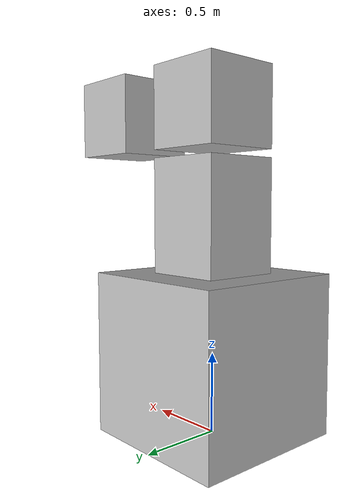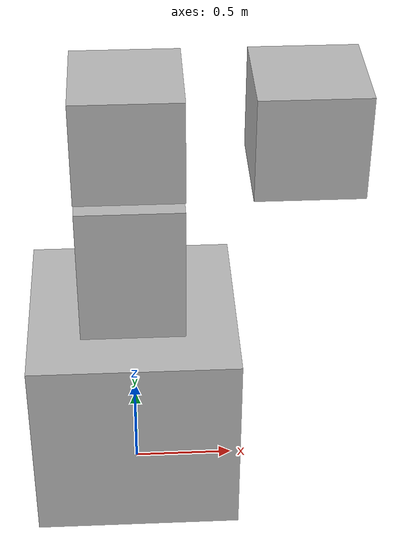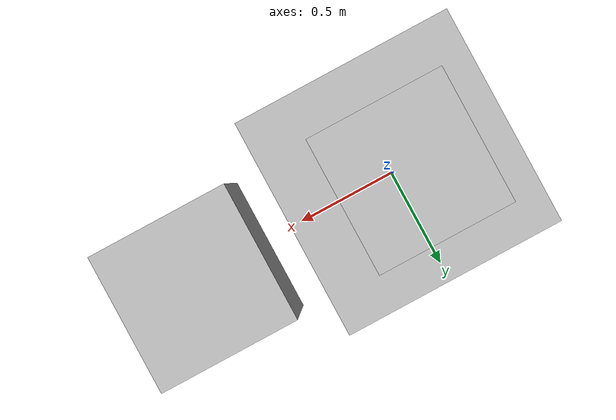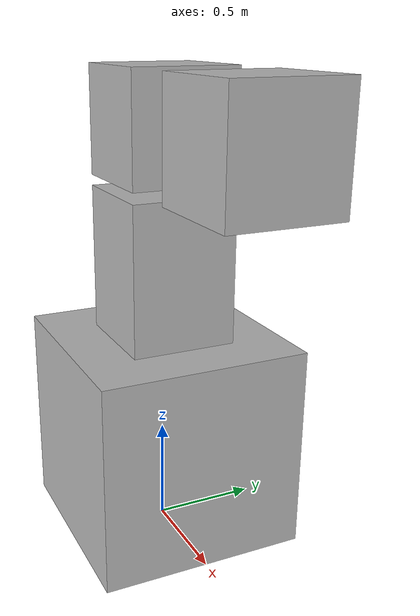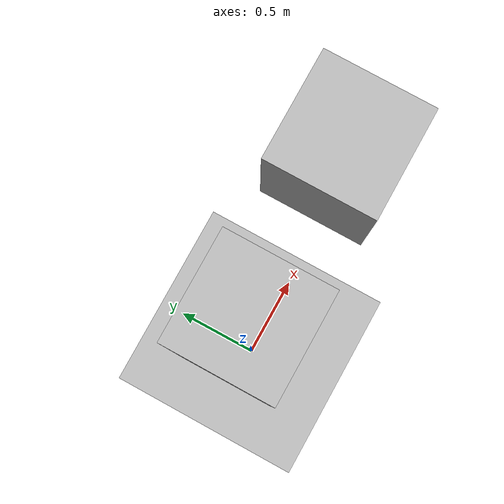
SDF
<?xml version="1.0" ?>
<sdf version="1.3">

  <model name="test_robot">
   <static>false</static>
      <link name="base_link">
        <pose>0 0 0.5 0 0 0</pose>
        <inertial>
          <pose>0 0 0.5 0 0 0</pose>
          <inertia>
            <ixx>1</ixx>
            <ixy>0</ixy>
            <ixz>0</ixz>
            <iyy>1</iyy>
            <iyz>0</iyz>
            <izz>1</izz>
          </inertia>
          <mass>1</mass>
        </inertial>
        <collision name="collision">
          <geometry>
            <box>
              <size>1 1 1</size>
            </box>
          </geometry>
        </collision>
        <visual name="visual">
          <geometry>
            <box>
              <size>1 1 1</size>
            </box>
          </geometry>
        </visual>
      </link>

      <link name="test_link1">
        <pose> 0 0 1.3 0 0 0 </pose>
        <inertial>
          <pose>0 0 0.5 0 0 0</pose>
          <inertia>
            <ixx>1</ixx>
            <ixy>0</ixy>
            <ixz>0</ixz>
            <iyy>1</iyy>
            <iyz>0</iyz>
            <izz>1</izz>
          </inertia>
          <mass>1</mass>
        </inertial>
        <collision name="collision">
          <geometry>
            <box>
              <size>.5 .5 .8</size>
            </box>>
          </geometry>
        </collision>
        <visual name="visual">
          <geometry>
            <box>
              <size>.5 .5 .8</size>
            </box>>
          </geometry>
        </visual>
      </link>

      <joint name="my_joint1" type="revolute">
        <parent>base_link</parent>
        <child>test_link1</child>
        <axis>
        <xyz>0 0 1</xyz>
        </axis>
      </joint>

      <link name="test_link2">
        <pose> 0 0 2.0 0 0 0 </pose>
        <inertial>
          <pose>0 0 0.5 0 0 0</pose>
          <inertia>
            <ixx>1</ixx>
            <ixy>0</ixy>
            <ixz>0</ixz>
            <iyy>1</iyy>
            <iyz>0</iyz>
            <izz>1</izz>
          </inertia>
          <mass>1</mass>
        </inertial>
        <collision name="collision">
          <geometry>
            <box>
              <size>.5 .5 .5</size>
            </box>>
          </geometry>
        </collision>
        <visual name="visual">
          <geometry>
            <box>
              <size>.5 .5 .5</size>
            </box>>
          </geometry>
        </visual>
      </link>

      <joint name="my_joint2" type="revolute">
        <parent>test_link1</parent>
        <child>test_link2</child>
        <axis>
        <xyz>0 0 1</xyz>
        </axis>
      </joint>

      <link name="test_link3">
        <pose> 0.8 0 2.0 0 0 0 </pose>
        <inertial>
          <pose>0 0 0.5 0 0 0</pose>
          <inertia>
            <ixx>1</ixx>
            <ixy>0</ixy>
            <ixz>0</ixz>
            <iyy>1</iyy>
            <iyz>0</iyz>
            <izz>1</izz>
          </inertia>
          <mass>1</mass>
        </inertial>
        <collision name="collision">
          <geometry>
            <box>
              <size>.5 .5 .5</size>
            </box>>
          </geometry>
        </collision>
        <visual name="visual">
          <geometry>
            <box>
              <size>.5 .5 .5</size>
            </box>>
          </geometry>
        </visual>
      </link>

      <joint name="my_joint3" type="revolute">
        <parent>test_link2</parent>
        <child>test_link3</child>
        <axis>
        <xyz>1 0 0</xyz>
        </axis>
      </joint>

     <plugin name="generic_controller" filename="libgeneric_controller_plugin.so">
       <controller joint_name="my_joint1">
         <type>position</type>
         <pid>10.0 0.1 0.1</pid>
       </controller>
       <controller joint_name="my_joint2">
         <type>velocity</type>
         <pid>1.0 0.1 0.01</pid>
       </controller>
       <controller joint_name="my_joint3">
         <type>velocity</type>
         <pid>1.0 0.1 0.01</pid>
       </controller>
     </plugin>
  </model>
</sdf>
